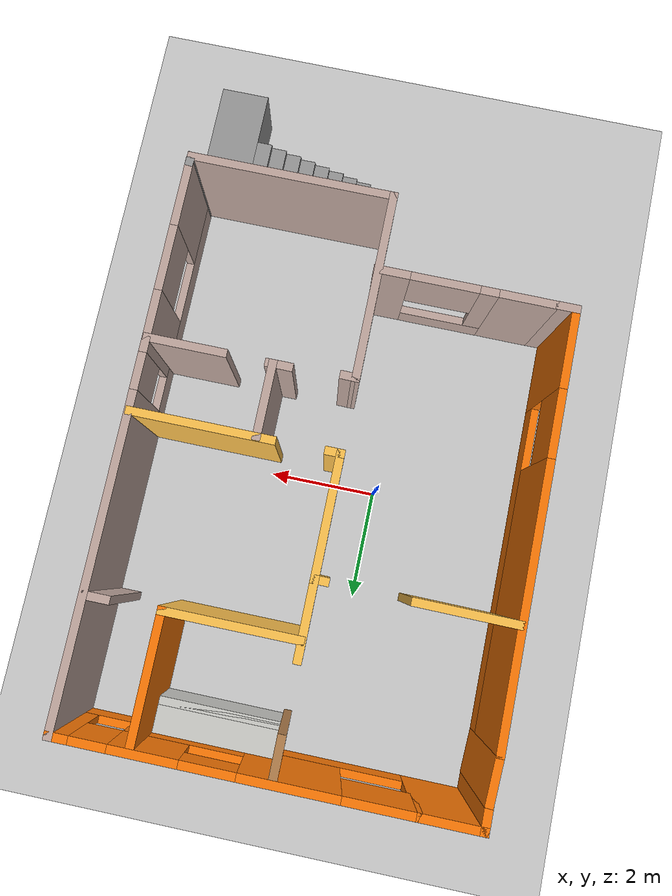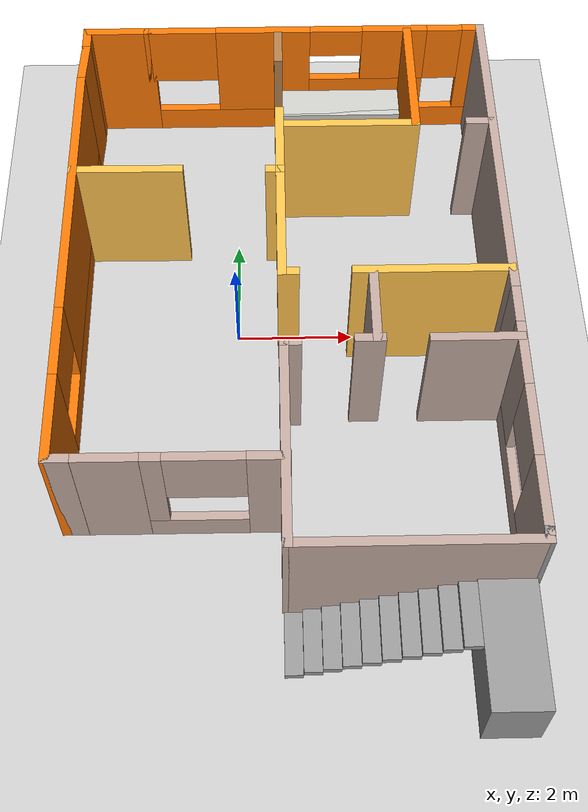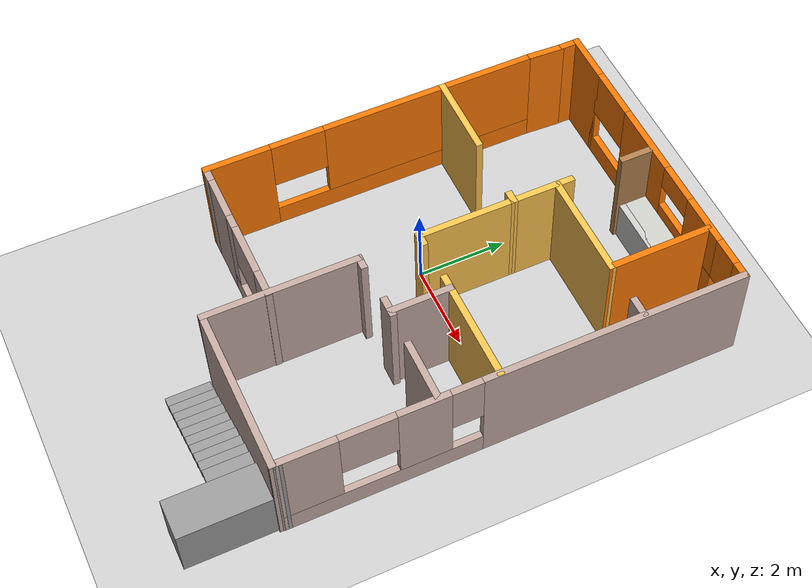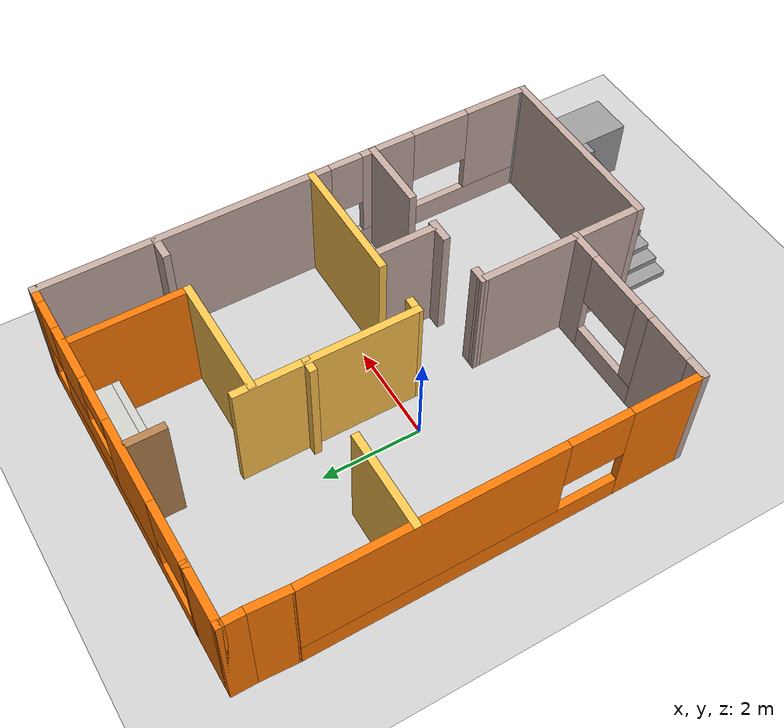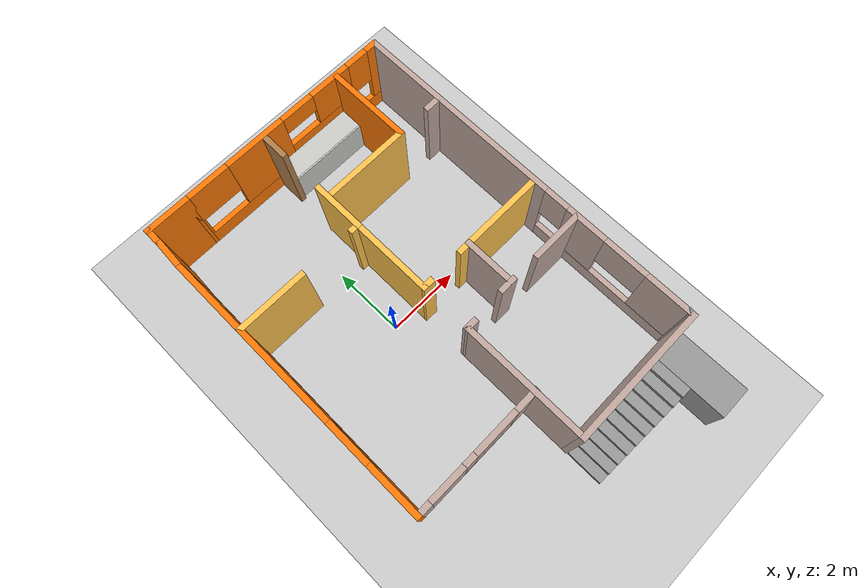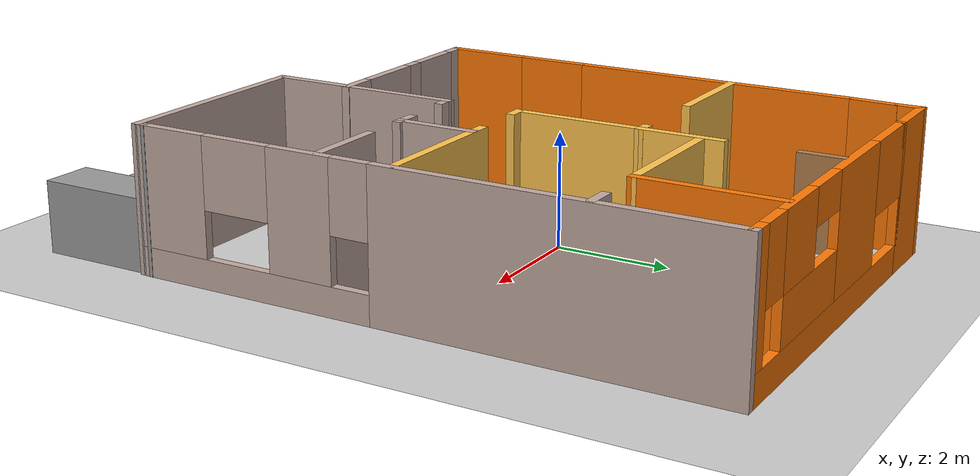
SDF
<sdf version="1.7">
 <world name="default">
  <scene><ambient>0.4 0.4 0.4 1</ambient><background>0.7 0.7 0.7 1</background><shadows>1</shadows></scene>
  <light name="sun" type="directional">
   <pose>0 0 10 0 -0 0</pose>
   <diffuse>0.8 0.8 0.8 1</diffuse>
   <specular>0.2 0.2 0.2 1</specular>
   <attenuation>
    <range>1000</range>
    <constant>0.9</constant>
    <linear>0.01</linear>
    <quadratic>0.001</quadratic>
   </attenuation>
   <direction>-0.5 0.1 -0.9</direction>
   <spot><inner_angle>0</inner_angle><outer_angle>0</outer_angle><falloff>0</falloff></spot>
  </light>
  <model name="ground_plane">
   <static>1</static>
   <link name="link">
    <collision name="collision">
     <geometry><plane><normal>0 0 1</normal><size>100 100</size></plane></geometry>
     <surface>
      <contact><collide_bitmask>65535</collide_bitmask></contact>
      <friction><ode><mu>100</mu><mu2>50</mu2></ode></friction>
     </surface>
    </collision>
    <visual name="visual">
     <cast_shadows>0</cast_shadows>
     <geometry><plane><normal>0 0 1</normal><size>100 100</size></plane></geometry>
     <material>
      <script><uri>file://media/materials/scripts/gazebo.material</uri><name>Gazebo/Grey</name></script>
     </material>
    </visual>
   </link>
  </model>
  <physics type="ode">
   <real_time_update_rate>1000</real_time_update_rate>
   <max_step_size>0.001</max_step_size>
   <real_time_factor>1</real_time_factor>
   <ode>
    <solver>
     <type>quick</type>
     <iters>150</iters>
     <precon_iters>0</precon_iters>
     <sor>1.4</sor>
     <use_dynamic_moi_rescaling>1</use_dynamic_moi_rescaling>
    </solver>
    <constraints>
     <cfm>1e-05</cfm>
     <erp>0.2</erp>
     <contact_max_correcting_vel>2000</contact_max_correcting_vel>
     <contact_surface_layer>0.01</contact_surface_layer>
    </constraints>
   </ode>
  </physics>
  <gravity>0 0 -9.8</gravity>
  <magnetic_field>6e-06 2.3e-05 -4.2e-05</magnetic_field>
  <atmosphere type="adiabatic"/>
  <spherical_coordinates>
   <surface_model>EARTH_WGS84</surface_model>
   <latitude_deg>0</latitude_deg>
   <longitude_deg>0</longitude_deg>
   <elevation>0</elevation>
   <heading_deg>0</heading_deg>
  </spherical_coordinates>
  <model name="a1">
   <pose>0.86738 -0.956276 0 0 -0 0</pose>
   <link name="Stairs_1">
    <visual name="Stairs_1_Visual_0">
     <pose>-0.002241 -4.72083 0.0625 0 -0 1.5708</pose>
     <geometry><box><size>1 0.2874 0.125</size></box></geometry>
     <material>
      <script><uri>file://media/materials/scripts/gazebo.material</uri><name>Gazebo/Grey</name></script>
      <ambient>1 1 1 1</ambient>
     </material>
     <meta><layer>0</layer></meta>
    </visual>
    <collision name="Stairs_1_Collision_0">
     <geometry><box><size>1 0.2874 0.125</size></box></geometry>
     <pose>-0.002241 -4.72083 0.0625 0 -0 1.5708</pose>
    </collision>
    <visual name="Stairs_1_Visual_1">
     <pose>0.285159 -4.72083 0.1875 0 -0 1.5708</pose>
     <geometry><box><size>1 0.2874 0.125</size></box></geometry>
     <material>
      <script><uri>file://media/materials/scripts/gazebo.material</uri><name>Gazebo/Grey</name></script>
      <ambient>1 1 1 1</ambient>
     </material>
     <meta><layer>0</layer></meta>
    </visual>
    <collision name="Stairs_1_Collision_1">
     <geometry><box><size>1 0.2874 0.125</size></box></geometry>
     <pose>0.285159 -4.72083 0.1875 0 -0 1.5708</pose>
    </collision>
    <visual name="Stairs_1_Visual_2">
     <pose>0.572559 -4.72083 0.3125 0 -0 1.5708</pose>
     <geometry><box><size>1 0.2874 0.125</size></box></geometry>
     <material>
      <script><uri>file://media/materials/scripts/gazebo.material</uri><name>Gazebo/Grey</name></script>
      <ambient>1 1 1 1</ambient>
     </material>
     <meta><layer>0</layer></meta>
    </visual>
    <collision name="Stairs_1_Collision_2">
     <geometry><box><size>1 0.2874 0.125</size></box></geometry>
     <pose>0.572559 -4.72083 0.3125 0 -0 1.5708</pose>
    </collision>
    <visual name="Stairs_1_Visual_3">
     <pose>0.859959 -4.72083 0.4375 0 -0 1.5708</pose>
     <geometry><box><size>1 0.2874 0.125</size></box></geometry>
     <material>
      <script><uri>file://media/materials/scripts/gazebo.material</uri><name>Gazebo/Grey</name></script>
      <ambient>1 1 1 1</ambient>
     </material>
     <meta><layer>0</layer></meta>
    </visual>
    <collision name="Stairs_1_Collision_3">
     <geometry><box><size>1 0.2874 0.125</size></box></geometry>
     <pose>0.859959 -4.72083 0.4375 0 -0 1.5708</pose>
    </collision>
    <visual name="Stairs_1_Visual_4">
     <pose>1.14736 -4.72083 0.5625 0 -0 1.5708</pose>
     <geometry><box><size>1 0.2874 0.125</size></box></geometry>
     <material>
      <script><uri>file://media/materials/scripts/gazebo.material</uri><name>Gazebo/Grey</name></script>
      <ambient>1 1 1 1</ambient>
     </material>
     <meta><layer>0</layer></meta>
    </visual>
    <collision name="Stairs_1_Collision_4">
     <geometry><box><size>1 0.2874 0.125</size></box></geometry>
     <pose>1.14736 -4.72083 0.5625 0 -0 1.5708</pose>
    </collision>
    <visual name="Stairs_1_Visual_5">
     <pose>1.43476 -4.72083 0.6875 0 -0 1.5708</pose>
     <geometry><box><size>1 0.2874 0.125</size></box></geometry>
     <material>
      <script><uri>file://media/materials/scripts/gazebo.material</uri><name>Gazebo/Grey</name></script>
      <ambient>1 1 1 1</ambient>
     </material>
     <meta><layer>0</layer></meta>
    </visual>
    <collision name="Stairs_1_Collision_5">
     <geometry><box><size>1 0.2874 0.125</size></box></geometry>
     <pose>1.43476 -4.72083 0.6875 0 -0 1.5708</pose>
    </collision>
    <visual name="Stairs_1_Visual_6">
     <pose>1.72216 -4.72083 0.8125 0 -0 1.5708</pose>
     <geometry><box><size>1 0.2874 0.125</size></box></geometry>
     <material>
      <script><uri>file://media/materials/scripts/gazebo.material</uri><name>Gazebo/Grey</name></script>
      <ambient>1 1 1 1</ambient>
     </material>
     <meta><layer>0</layer></meta>
    </visual>
    <collision name="Stairs_1_Collision_6">
     <geometry><box><size>1 0.2874 0.125</size></box></geometry>
     <pose>1.72216 -4.72083 0.8125 0 -0 1.5708</pose>
    </collision>
    <visual name="Stairs_1_Visual_7">
     <pose>2.00956 -4.72083 0.9375 0 -0 1.5708</pose>
     <geometry><box><size>1 0.2874 0.125</size></box></geometry>
     <material>
      <script><uri>file://media/materials/scripts/gazebo.material</uri><name>Gazebo/Grey</name></script>
      <ambient>1 1 1 1</ambient>
     </material>
     <meta><layer>0</layer></meta>
    </visual>
    <collision name="Stairs_1_Collision_7">
     <geometry><box><size>1 0.2874 0.125</size></box></geometry>
     <pose>2.00956 -4.72083 0.9375 0 -0 1.5708</pose>
    </collision>
    <visual name="Stairs_1_Visual_8">
     <pose>2.29696 -4.72083 1.0625 0 -0 1.5708</pose>
     <geometry><box><size>1 0.2874 0.125</size></box></geometry>
     <material>
      <script><uri>file://media/materials/scripts/gazebo.material</uri><name>Gazebo/Grey</name></script>
      <ambient>1 1 1 1</ambient>
     </material>
     <meta><layer>0</layer></meta>
    </visual>
    <collision name="Stairs_1_Collision_8">
     <geometry><box><size>1 0.2874 0.125</size></box></geometry>
     <pose>2.29696 -4.72083 1.0625 0 -0 1.5708</pose>
    </collision>
    <visual name="Stairs_1_Visual_9">
     <pose>2.58436 -4.72083 1.1875 0 -0 1.5708</pose>
     <geometry><box><size>1 0.2874 0.125</size></box></geometry>
     <material>
      <script><uri>file://media/materials/scripts/gazebo.material</uri><name>Gazebo/Grey</name></script>
      <ambient>1 1 1 1</ambient>
     </material>
     <meta><layer>0</layer></meta>
    </visual>
    <collision name="Stairs_1_Collision_9">
     <geometry><box><size>1 0.2874 0.125</size></box></geometry>
     <pose>2.58436 -4.72083 1.1875 0 -0 1.5708</pose>
    </collision>
   </link>
   <link name="Stairs_5">
    <visual name="Stairs_5_Visual_0">
     <pose>1.07856 5.7184 0.5 0 -0 -1.5708</pose>
     <geometry><box><size>0.607898 2.3944 1</size></box></geometry>
     <material>
      <script><uri>file://media/materials/scripts/gazebo.material</uri><name>Gazebo/CeilingTiled</name></script>
      <ambient>1 1 1 1</ambient>
     </material>
     <meta><layer>0</layer></meta>
    </visual>
    <collision name="Stairs_5_Collision_0">
     <geometry><box><size>0.607898 2.3944 1</size></box></geometry>
     <pose>1.07856 5.7184 0.5 0 -0 -1.5708</pose>
    </collision>
   </link>
   <link name="Stairs_7">
    <visual name="Stairs_7_Visual_0">
     <pose>3.17806 -5.15156 0.625 0 -0 0</pose>
     <geometry><box><size>0.903903 2.05115 1.25</size></box></geometry>
     <material>
      <script><uri>file://media/materials/scripts/gazebo.material</uri><name>Gazebo/Grey</name></script>
      <ambient>1 1 1 1</ambient>
     </material>
     <meta><layer>0</layer></meta>
    </visual>
    <collision name="Stairs_7_Collision_0">
     <geometry><box><size>0.903903 2.05115 1.25</size></box></geometry>
     <pose>3.17806 -5.15156 0.625 0 -0 0</pose>
    </collision>
   </link>
   <link name="Wall_0">
    <collision name="Wall_0_Collision">
     <geometry><box><size>0.5 0.15 2.5</size></box></geometry>
     <pose>0 0 1.25 0 -0 0</pose>
    </collision>
    <visual name="Wall_0_Visual">
     <pose>0 0 1.25 0 -0 0</pose>
     <geometry><box><size>0.5 0.15 2.5</size></box></geometry>
     <material>
      <script><uri>file://media/materials/scripts/gazebo.material</uri><name>Gazebo/Grey</name></script>
      <ambient>0.996078 0.47451 0.0196078 1</ambient>
     </material>
     <meta><layer>0</layer></meta>
    </visual>
    <pose>-3.58324 5.92713 0 0 -0 1.5708</pose>
   </link>
   <link name="Wall_1">
    <collision name="Wall_1_Collision">
     <geometry><box><size>1.25 0.15 2.5</size></box></geometry>
     <pose>0 0 1.25 0 -0 0</pose>
    </collision>
    <visual name="Wall_1_Visual">
     <pose>0 0 1.25 0 -0 0</pose>
     <geometry><box><size>1.25 0.15 2.5</size></box></geometry>
     <material>
      <script><uri>file://media/materials/scripts/gazebo.material</uri><name>Gazebo/Grey</name></script>
      <ambient>0.996078 0.47451 0.0196078 1</ambient>
     </material>
     <meta><layer>0</layer></meta>
    </visual>
    <pose>-3.03324 6.10213 0 0 -0 0</pose>
   </link>
   <link name="Wall_11">
    <pose>-1.12794 -2.72759 0 0 -0 3.14159</pose>
    <visual name="Wall_11_Visual_0">
     <pose>-0.792071 0 1.25 0 -0 0</pose>
     <geometry><box><size>0.665858 0.15 2.5</size></box></geometry>
     <material>
      <script><uri>file://media/materials/scripts/gazebo.material</uri><name>Gazebo/Grey</name></script>
      <ambient>0.760784 0.662745 0.627451 1</ambient>
     </material>
     <meta><layer>0</layer></meta>
    </visual>
    <collision name="Wall_11_Collision_0">
     <geometry><box><size>0.665858 0.15 2.5</size></box></geometry>
     <pose>-0.792071 0 1.25 0 -0 0</pose>
    </collision>
    <visual name="Wall_11_Visual_1">
     <pose>0.332929 0 0.25 0 -0 0</pose>
     <geometry><box><size>1.58414 0.15 0.5</size></box></geometry>
     <material>
      <script><uri>file://media/materials/scripts/gazebo.material</uri><name>Gazebo/Grey</name></script>
      <ambient>0.760784 0.662745 0.627451 1</ambient>
     </material>
     <meta><layer>0</layer></meta>
    </visual>
    <collision name="Wall_11_Collision_1">
     <geometry><box><size>1.58414 0.15 0.5</size></box></geometry>
     <pose>0.332929 0 0.25 0 -0 0</pose>
    </collision>
    <visual name="Wall_11_Visual_2">
     <pose>0.957778 0 1.5 0 -0 0</pose>
     <geometry><box><size>0.334444 0.15 2</size></box></geometry>
     <material>
      <script><uri>file://media/materials/scripts/gazebo.material</uri><name>Gazebo/Grey</name></script>
      <ambient>0.760784 0.662745 0.627451 1</ambient>
     </material>
     <meta><layer>0</layer></meta>
    </visual>
    <collision name="Wall_11_Collision_2">
     <geometry><box><size>0.334444 0.15 2</size></box></geometry>
     <pose>0.957778 0 1.5 0 -0 0</pose>
    </collision>
    <visual name="Wall_11_Visual_3">
     <pose>0.165707 0 1.9 0 -0 0</pose>
     <geometry><box><size>1.2497 0.15 1.2</size></box></geometry>
     <material>
      <script><uri>file://media/materials/scripts/gazebo.material</uri><name>Gazebo/Grey</name></script>
      <ambient>0.760784 0.662745 0.627451 1</ambient>
     </material>
     <meta><layer>0</layer></meta>
    </visual>
    <collision name="Wall_11_Collision_3">
     <geometry><box><size>1.2497 0.15 1.2</size></box></geometry>
     <pose>0.165707 0 1.9 0 -0 0</pose>
    </collision>
   </link>
   <link name="Wall_13">
    <collision name="Wall_13_Collision">
     <geometry><box><size>0.437674 0.15 2.5</size></box></geometry>
     <pose>0 0 1.25 0 -0 0</pose>
    </collision>
    <visual name="Wall_13_Visual">
     <pose>0 0 1.25 0 -0 0</pose>
     <geometry><box><size>0.437674 0.15 2.5</size></box></geometry>
     <material>
      <script><uri>file://media/materials/scripts/gazebo.material</uri><name>Gazebo/Grey</name></script>
      <ambient>0.760784 0.662745 0.627451 1</ambient>
     </material>
     <meta><layer>0</layer></meta>
    </visual>
    <pose>-3.47772 -2.72759 0 0 -0 3.14159</pose>
   </link>
   <link name="Wall_14">
    <pose>-3.62156 1.07241 0 0 -0 1.5708</pose>
    <visual name="Wall_14_Visual_0">
     <pose>-3.11359 0 1.25 0 -0 0</pose>
     <geometry><box><size>1.52282 0.15 2.5</size></box></geometry>
     <material>
      <script><uri>file://media/materials/scripts/gazebo.material</uri><name>Gazebo/Grey</name></script>
      <ambient>0.996078 0.47451 0.0196078 1</ambient>
     </material>
     <meta><layer>0</layer></meta>
    </visual>
    <collision name="Wall_14_Collision_0">
     <geometry><box><size>1.52282 0.15 2.5</size></box></geometry>
     <pose>-3.11359 0 1.25 0 -0 0</pose>
    </collision>
    <visual name="Wall_14_Visual_1">
     <pose>0.761408 0 0.25 0 -0 0</pose>
     <geometry><box><size>6.22719 0.15 0.5</size></box></geometry>
     <material>
      <script><uri>file://media/materials/scripts/gazebo.material</uri><name>Gazebo/Grey</name></script>
      <ambient>0.996078 0.47451 0.0196078 1</ambient>
     </material>
     <meta><layer>0</layer></meta>
    </visual>
    <collision name="Wall_14_Collision_1">
     <geometry><box><size>6.22719 0.15 0.5</size></box></geometry>
     <pose>0.761408 0 0.25 0 -0 0</pose>
    </collision>
    <visual name="Wall_14_Visual_2">
     <pose>1.38064 0 1.5 0 -0 0</pose>
     <geometry><box><size>4.98873 0.15 2</size></box></geometry>
     <material>
      <script><uri>file://media/materials/scripts/gazebo.material</uri><name>Gazebo/Grey</name></script>
      <ambient>0.996078 0.47451 0.0196078 1</ambient>
     </material>
     <meta><layer>0</layer></meta>
    </visual>
    <collision name="Wall_14_Collision_2">
     <geometry><box><size>4.98873 0.15 2</size></box></geometry>
     <pose>1.38064 0 1.5 0 -0 0</pose>
    </collision>
    <visual name="Wall_14_Visual_3">
     <pose>-1.73296 0 1.9 0 -0 0</pose>
     <geometry><box><size>1.23846 0.15 1.2</size></box></geometry>
     <material>
      <script><uri>file://media/materials/scripts/gazebo.material</uri><name>Gazebo/Grey</name></script>
      <ambient>0.996078 0.47451 0.0196078 1</ambient>
     </material>
     <meta><layer>0</layer></meta>
    </visual>
    <collision name="Wall_14_Collision_3">
     <geometry><box><size>1.23846 0.15 1.2</size></box></geometry>
     <pose>-1.73296 0 1.9 0 -0 0</pose>
    </collision>
   </link>
   <link name="Wall_16">
    <collision name="Wall_16_Collision">
     <geometry><box><size>0.75 0.15 2.5</size></box></geometry>
     <pose>0 0 1.25 0 -0 0</pose>
    </collision>
    <visual name="Wall_16_Visual">
     <pose>0 0 1.25 0 -0 0</pose>
     <geometry><box><size>0.75 0.15 2.5</size></box></geometry>
     <material>
      <script><uri>file://media/materials/scripts/gazebo.material</uri><name>Gazebo/Wood</name></script>
      <ambient>1 1 1 1</ambient>
     </material>
     <meta><layer>0</layer></meta>
    </visual>
    <pose>-0.099447 5.67243 0 0 -0 1.5708</pose>
   </link>
   <link name="Wall_19">
    <collision name="Wall_19_Collision">
     <geometry><box><size>1.48853 0.15 2.5</size></box></geometry>
     <pose>0 0 1.25 0 -0 0</pose>
    </collision>
    <visual name="Wall_19_Visual">
     <pose>0 0 1.25 0 -0 0</pose>
     <geometry><box><size>1.48853 0.15 2.5</size></box></geometry>
     <material>
      <script><uri>file://media/materials/scripts/gazebo.material</uri><name>Gazebo/Grey</name></script>
      <ambient>1 0.764706 0.305882 1</ambient>
     </material>
     <meta><layer>0</layer></meta>
    </visual>
    <pose>-0.098941 3.43217 0 0 -0 1.5708</pose>
   </link>
   <link name="Wall_2">
    <pose>0.566761 6.10213 0 0 -0 0</pose>
    <visual name="Wall_2_Visual_0">
     <pose>-3.08057 0 1.25 0 -0 0</pose>
     <geometry><box><size>0.088858 0.15 2.5</size></box></geometry>
     <material>
      <script><uri>file://media/materials/scripts/gazebo.material</uri><name>Gazebo/Grey</name></script>
      <ambient>0.996078 0.47451 0.0196078 1</ambient>
     </material>
     <meta><layer>0</layer></meta>
    </visual>
    <collision name="Wall_2_Collision_0">
     <geometry><box><size>0.088858 0.15 2.5</size></box></geometry>
     <pose>-3.08057 0 1.25 0 -0 0</pose>
    </collision>
    <visual name="Wall_2_Visual_1">
     <pose>0.044429 0 0.25 0 -0 0</pose>
     <geometry><box><size>6.16114 0.15 0.5</size></box></geometry>
     <material>
      <script><uri>file://media/materials/scripts/gazebo.material</uri><name>Gazebo/Grey</name></script>
      <ambient>0.996078 0.47451 0.0196078 1</ambient>
     </material>
     <meta><layer>0</layer></meta>
    </visual>
    <collision name="Wall_2_Collision_1">
     <geometry><box><size>6.16114 0.15 0.5</size></box></geometry>
     <pose>0.044429 0 0.25 0 -0 0</pose>
    </collision>
    <visual name="Wall_2_Visual_2">
     <pose>-0.938309 0 1.5 0 -0 0</pose>
     <geometry><box><size>1.73433 0.15 2</size></box></geometry>
     <material>
      <script><uri>file://media/materials/scripts/gazebo.material</uri><name>Gazebo/Grey</name></script>
      <ambient>0.996078 0.47451 0.0196078 1</ambient>
     </material>
     <meta><layer>0</layer></meta>
    </visual>
    <collision name="Wall_2_Collision_2">
     <geometry><box><size>1.73433 0.15 2</size></box></geometry>
     <pose>-0.938309 0 1.5 0 -0 0</pose>
    </collision>
    <visual name="Wall_2_Visual_3">
     <pose>2.92469 0 1.5 0 -0 0</pose>
     <geometry><box><size>0.400628 0.15 2</size></box></geometry>
     <material>
      <script><uri>file://media/materials/scripts/gazebo.material</uri><name>Gazebo/Grey</name></script>
      <ambient>0.996078 0.47451 0.0196078 1</ambient>
     </material>
     <meta><layer>0</layer></meta>
    </visual>
    <collision name="Wall_2_Collision_3">
     <geometry><box><size>0.400628 0.15 2</size></box></geometry>
     <pose>2.92469 0 1.5 0 -0 0</pose>
    </collision>
    <visual name="Wall_2_Visual_4">
     <pose>1.00375 0 0.9 0 -0 0</pose>
     <geometry><box><size>2.14979 0.15 0.8</size></box></geometry>
     <material>
      <script><uri>file://media/materials/scripts/gazebo.material</uri><name>Gazebo/Grey</name></script>
      <ambient>0.996078 0.47451 0.0196078 1</ambient>
     </material>
     <meta><layer>0</layer></meta>
    </visual>
    <collision name="Wall_2_Collision_4">
     <geometry><box><size>2.14979 0.15 0.8</size></box></geometry>
     <pose>1.00375 0 0.9 0 -0 0</pose>
    </collision>
    <visual name="Wall_2_Visual_5">
     <pose>1.48375 0 1.9 0 -0 0</pose>
     <geometry><box><size>1.18979 0.15 1.2</size></box></geometry>
     <material>
      <script><uri>file://media/materials/scripts/gazebo.material</uri><name>Gazebo/Grey</name></script>
      <ambient>0.996078 0.47451 0.0196078 1</ambient>
     </material>
     <meta><layer>0</layer></meta>
    </visual>
    <collision name="Wall_2_Collision_5">
     <geometry><box><size>1.18979 0.15 1.2</size></box></geometry>
     <pose>1.48375 0 1.9 0 -0 0</pose>
    </collision>
    <visual name="Wall_2_Visual_6">
     <pose>-2.42081 0 1.9 0 -0 0</pose>
     <geometry><box><size>1.23067 0.15 1.2</size></box></geometry>
     <material>
      <script><uri>file://media/materials/scripts/gazebo.material</uri><name>Gazebo/Grey</name></script>
      <ambient>0.996078 0.47451 0.0196078 1</ambient>
     </material>
     <meta><layer>0</layer></meta>
    </visual>
    <collision name="Wall_2_Collision_6">
     <geometry><box><size>1.23067 0.15 1.2</size></box></geometry>
     <pose>-2.42081 0 1.9 0 -0 0</pose>
    </collision>
    <visual name="Wall_2_Visual_7">
     <pose>2.40151 0 1.9 0 -0 0</pose>
     <geometry><box><size>0.64573 0.15 1.2</size></box></geometry>
     <material>
      <script><uri>file://media/materials/scripts/gazebo.material</uri><name>Gazebo/Grey</name></script>
      <ambient>0.996078 0.47451 0.0196078 1</ambient>
     </material>
     <meta><layer>0</layer></meta>
    </visual>
    <collision name="Wall_2_Collision_7">
     <geometry><box><size>0.64573 0.15 1.2</size></box></geometry>
     <pose>2.40151 0 1.9 0 -0 0</pose>
    </collision>
    <visual name="Wall_2_Visual_8">
     <pose>0.408855 0 2.2015 0 -0 0</pose>
     <geometry><box><size>0.96 0.15 0.597</size></box></geometry>
     <material>
      <script><uri>file://media/materials/scripts/gazebo.material</uri><name>Gazebo/Grey</name></script>
      <ambient>0.996078 0.47451 0.0196078 1</ambient>
     </material>
     <meta><layer>0</layer></meta>
    </visual>
    <collision name="Wall_2_Collision_8">
     <geometry><box><size>0.96 0.15 0.597</size></box></geometry>
     <pose>0.408855 0 2.2015 0 -0 0</pose>
    </collision>
   </link>
   <link name="Wall_23">
    <collision name="Wall_23_Collision">
     <geometry><box><size>0.356563 0.15 2.5</size></box></geometry>
     <pose>0 0 1.25 0 -0 0</pose>
    </collision>
    <visual name="Wall_23_Visual">
     <pose>0 0 1.25 0 -0 0</pose>
     <geometry><box><size>0.356563 0.15 2.5</size></box></geometry>
     <material>
      <script><uri>file://media/materials/scripts/gazebo.material</uri><name>Gazebo/Grey</name></script>
      <ambient>1 0.764706 0.305882 1</ambient>
     </material>
     <meta><layer>0</layer></meta>
    </visual>
    <pose>0.004341 0.6051 0 0 -0 3.14089</pose>
   </link>
   <link name="Wall_24">
    <collision name="Wall_24_Collision">
     <geometry><box><size>2.30751 0.15 2.5</size></box></geometry>
     <pose>0 0 1.25 0 -0 0</pose>
    </collision>
    <visual name="Wall_24_Visual">
     <pose>0 0 1.25 0 -0 0</pose>
     <geometry><box><size>2.30751 0.15 2.5</size></box></geometry>
     <material>
      <script><uri>file://media/materials/scripts/gazebo.material</uri><name>Gazebo/Grey</name></script>
      <ambient>1 0.764706 0.305882 1</ambient>
     </material>
     <meta><layer>0</layer></meta>
    </visual>
    <pose>-0.098941 1.68417 0 0 -0 1.5708</pose>
   </link>
   <link name="Wall_26">
    <collision name="Wall_26_Collision">
     <geometry><box><size>2.5 0.15 2.5</size></box></geometry>
     <pose>0 0 1.25 0 -0 0</pose>
    </collision>
    <visual name="Wall_26_Visual">
     <pose>0 0 1.25 0 -0 0</pose>
     <geometry><box><size>2.5 0.15 2.5</size></box></geometry>
     <material>
      <script><uri>file://media/materials/scripts/gazebo.material</uri><name>Gazebo/Grey</name></script>
      <ambient>1 0.764706 0.305882 1</ambient>
     </material>
     <meta><layer>0</layer></meta>
    </visual>
    <pose>1.10206 3.78517 0 0 -0 0</pose>
   </link>
   <link name="Wall_28">
    <collision name="Wall_28_Collision">
     <geometry><box><size>2.40267 0.15 2.5</size></box></geometry>
     <pose>0 0 1.25 0 -0 0</pose>
    </collision>
    <visual name="Wall_28_Visual">
     <pose>0 0 1.25 0 -0 0</pose>
     <geometry><box><size>2.40267 0.15 2.5</size></box></geometry>
     <material>
      <script><uri>file://media/materials/scripts/gazebo.material</uri><name>Gazebo/Grey</name></script>
      <ambient>0.996078 0.47451 0.0196078 1</ambient>
     </material>
     <meta><layer>0</layer></meta>
    </visual>
    <pose>2.27612 4.91168 0 0 -0 1.57163</pose>
   </link>
   <link name="Wall_3">
    <pose>3.61676 1.05214 0 0 -0 -1.5708</pose>
    <visual name="Wall_3_Visual_0">
     <pose>-2.16147 0 1.25 0 -0 0</pose>
     <geometry><box><size>5.92706 0.15 2.5</size></box></geometry>
     <material>
      <script><uri>file://media/materials/scripts/gazebo.material</uri><name>Gazebo/Grey</name></script>
      <ambient>0.760784 0.662745 0.627451 1</ambient>
     </material>
     <meta><layer>0</layer></meta>
    </visual>
    <collision name="Wall_3_Collision_0">
     <geometry><box><size>5.92706 0.15 2.5</size></box></geometry>
     <pose>-2.16147 0 1.25 0 -0 0</pose>
    </collision>
    <visual name="Wall_3_Visual_1">
     <pose>2.96353 0 0.25 0 -0 0</pose>
     <geometry><box><size>4.32294 0.15 0.5</size></box></geometry>
     <material>
      <script><uri>file://media/materials/scripts/gazebo.material</uri><name>Gazebo/Grey</name></script>
      <ambient>0.760784 0.662745 0.627451 1</ambient>
     </material>
     <meta><layer>0</layer></meta>
    </visual>
    <collision name="Wall_3_Collision_1">
     <geometry><box><size>4.32294 0.15 0.5</size></box></geometry>
     <pose>2.96353 0 0.25 0 -0 0</pose>
    </collision>
    <visual name="Wall_3_Visual_2">
     <pose>2.05041 0 1.5 0 -0 0</pose>
     <geometry><box><size>1.14403 0.15 2</size></box></geometry>
     <material>
      <script><uri>file://media/materials/scripts/gazebo.material</uri><name>Gazebo/Grey</name></script>
      <ambient>0.760784 0.662745 0.627451 1</ambient>
     </material>
     <meta><layer>0</layer></meta>
    </visual>
    <collision name="Wall_3_Collision_2">
     <geometry><box><size>1.14403 0.15 2</size></box></geometry>
     <pose>2.05041 0 1.5 0 -0 0</pose>
    </collision>
    <visual name="Wall_3_Visual_3">
     <pose>4.4817 0 1.5 0 -0 0</pose>
     <geometry><box><size>1.2866 0.15 2</size></box></geometry>
     <material>
      <script><uri>file://media/materials/scripts/gazebo.material</uri><name>Gazebo/Grey</name></script>
      <ambient>0.760784 0.662745 0.627451 1</ambient>
     </material>
     <meta><layer>0</layer></meta>
    </visual>
    <collision name="Wall_3_Collision_3">
     <geometry><box><size>1.2866 0.15 2</size></box></geometry>
     <pose>4.4817 0 1.5 0 -0 0</pose>
    </collision>
    <visual name="Wall_3_Visual_4">
     <pose>1.14023 0 1.9 0 -0 0</pose>
     <geometry><box><size>0.676333 0.15 1.2</size></box></geometry>
     <material>
      <script><uri>file://media/materials/scripts/gazebo.material</uri><name>Gazebo/Grey</name></script>
      <ambient>0.760784 0.662745 0.627451 1</ambient>
     </material>
     <meta><layer>0</layer></meta>
    </visual>
    <collision name="Wall_3_Collision_4">
     <geometry><box><size>0.676333 0.15 1.2</size></box></geometry>
     <pose>1.14023 0 1.9 0 -0 0</pose>
    </collision>
    <visual name="Wall_3_Visual_5">
     <pose>3.23041 0 1.9 0 -0 0</pose>
     <geometry><box><size>1.21597 0.15 1.2</size></box></geometry>
     <material>
      <script><uri>file://media/materials/scripts/gazebo.material</uri><name>Gazebo/Grey</name></script>
      <ambient>0.760784 0.662745 0.627451 1</ambient>
     </material>
     <meta><layer>0</layer></meta>
    </visual>
    <collision name="Wall_3_Collision_5">
     <geometry><box><size>1.21597 0.15 1.2</size></box></geometry>
     <pose>3.23041 0 1.9 0 -0 0</pose>
    </collision>
   </link>
   <link name="Wall_30">
    <collision name="Wall_30_Collision">
     <geometry><box><size>0.5 0.15 2.5</size></box></geometry>
     <pose>0 0 1.25 0 -0 0</pose>
    </collision>
    <visual name="Wall_30_Visual">
     <pose>0 0 1.25 0 -0 0</pose>
     <geometry><box><size>0.5 0.15 2.5</size></box></geometry>
     <material>
      <script><uri>file://media/materials/scripts/gazebo.material</uri><name>Gazebo/Grey</name></script>
      <ambient>0.760784 0.662745 0.627451 1</ambient>
     </material>
     <meta><layer>0</layer></meta>
    </visual>
    <pose>3.39846 3.79947 0 0 -0 0</pose>
   </link>
   <link name="Wall_32">
    <collision name="Wall_32_Collision">
     <geometry><box><size>2.64289 0.15 2.5</size></box></geometry>
     <pose>0 0 1.25 0 -0 0</pose>
    </collision>
    <visual name="Wall_32_Visual">
     <pose>0 0 1.25 0 -0 0</pose>
     <geometry><box><size>2.64289 0.15 2.5</size></box></geometry>
     <material>
      <script><uri>file://media/materials/scripts/gazebo.material</uri><name>Gazebo/Grey</name></script>
      <ambient>1 0.764706 0.305882 1</ambient>
     </material>
     <meta><layer>0</layer></meta>
    </visual>
    <pose>2.3485 0.622257 0 0 -0 0</pose>
   </link>
   <link name="Wall_36">
    <collision name="Wall_36_Collision">
     <geometry><box><size>0.5 0.15 2.5</size></box></geometry>
     <pose>0 0 1.25 0 -0 0</pose>
    </collision>
    <visual name="Wall_36_Visual">
     <pose>0 0 1.25 0 -0 0</pose>
     <geometry><box><size>0.5 0.15 2.5</size></box></geometry>
     <material>
      <script><uri>file://media/materials/scripts/gazebo.material</uri><name>Gazebo/Grey</name></script>
      <ambient>0.760784 0.662745 0.627451 1</ambient>
     </material>
     <meta><layer>0</layer></meta>
    </visual>
    <pose>1.25751 -0.687733 0 0 -0 0</pose>
   </link>
   <link name="Wall_43">
    <collision name="Wall_43_Collision">
     <geometry><box><size>1.44796 0.15 2.5</size></box></geometry>
     <pose>0 0 1.25 0 -0 0</pose>
    </collision>
    <visual name="Wall_43_Visual">
     <pose>0 0 1.25 0 -0 0</pose>
     <geometry><box><size>1.44796 0.15 2.5</size></box></geometry>
     <material>
      <script><uri>file://media/materials/scripts/gazebo.material</uri><name>Gazebo/Grey</name></script>
      <ambient>0.760784 0.662745 0.627451 1</ambient>
     </material>
     <meta><layer>0</layer></meta>
    </visual>
    <pose>1.36906 -0.038328 0 0 -0 -1.5708</pose>
   </link>
   <link name="Wall_45">
    <collision name="Wall_45_Collision">
     <geometry><box><size>1.5 0.15 2.5</size></box></geometry>
     <pose>0 0 1.25 0 -0 0</pose>
    </collision>
    <visual name="Wall_45_Visual">
     <pose>0 0 1.25 0 -0 0</pose>
     <geometry><box><size>1.5 0.15 2.5</size></box></geometry>
     <material>
      <script><uri>file://media/materials/scripts/gazebo.material</uri><name>Gazebo/Grey</name></script>
      <ambient>0.760784 0.662745 0.627451 1</ambient>
     </material>
     <meta><layer>0</layer></meta>
    </visual>
    <pose>2.92876 -0.697508 0 0 -0 0</pose>
   </link>
   <link name="Wall_48">
    <collision name="Wall_48_Collision">
     <geometry><box><size>2.50908 0.15 1</size></box></geometry>
     <pose>0 0 0.5 0 -0 0</pose>
    </collision>
    <visual name="Wall_48_Visual">
     <pose>0 0 0.5 0 -0 0</pose>
     <geometry><box><size>2.50908 0.15 1</size></box></geometry>
     <material>
      <script><uri>file://media/materials/scripts/gazebo.material</uri><name>Gazebo/CeilingTiled</name></script>
      <ambient>1 1 1 1</ambient>
     </material>
     <meta><layer>0</layer></meta>
    </visual>
    <pose>1.08856 5.44517 0 0 -0 -3.14159</pose>
   </link>
   <link name="Wall_6">
    <collision name="Wall_6_Collision">
     <geometry><box><size>0.266015 0.15 2.5</size></box></geometry>
     <pose>0 0 1.25 0 -0 0</pose>
    </collision>
    <visual name="Wall_6_Visual">
     <pose>0 0 1.25 0 -0 0</pose>
     <geometry><box><size>0.266015 0.15 2.5</size></box></geometry>
     <material>
      <script><uri>file://media/materials/scripts/gazebo.material</uri><name>Gazebo/Grey</name></script>
      <ambient>1 1 1 1</ambient>
     </material>
     <meta><layer>0</layer></meta>
    </visual>
    <pose>3.61291 -4.05585 0 0 -0 -1.63712</pose>
   </link>
   <link name="Wall_7">
    <collision name="Wall_7_Collision">
     <geometry><box><size>3.85062 0.15 2.5</size></box></geometry>
     <pose>0 0 1.25 0 -0 0</pose>
    </collision>
    <visual name="Wall_7_Visual">
     <pose>0 0 1.25 0 -0 0</pose>
     <geometry><box><size>3.85062 0.15 2.5</size></box></geometry>
     <material>
      <script><uri>file://media/materials/scripts/gazebo.material</uri><name>Gazebo/Grey</name></script>
      <ambient>0.760784 0.662745 0.627451 1</ambient>
     </material>
     <meta><layer>0</layer></meta>
    </visual>
    <pose>1.75906 -4.11383 0 0 -0 3.14159</pose>
   </link>
   <link name="Wall_75">
    <collision name="Wall_75_Collision">
     <geometry><box><size>1.94985 0.15 2.5</size></box></geometry>
     <pose>0 0 1.25 0 -0 0</pose>
    </collision>
    <visual name="Wall_75_Visual">
     <pose>0 0 1.25 0 -0 0</pose>
     <geometry><box><size>1.94985 0.15 2.5</size></box></geometry>
     <material>
      <script><uri>file://media/materials/scripts/gazebo.material</uri><name>Gazebo/Grey</name></script>
      <ambient>1 0.764706 0.305882 1</ambient>
     </material>
     <meta><layer>0</layer></meta>
    </visual>
    <pose>-2.72008 2.79346 0 0 -0 -0.006211</pose>
   </link>
   <link name="Wall_77">
    <collision name="Wall_77_Collision">
     <geometry><box><size>0.328552 0.15 2.5</size></box></geometry>
     <pose>0 0 1.25 0 -0 0</pose>
    </collision>
    <visual name="Wall_77_Visual">
     <pose>0 0 1.25 0 -0 0</pose>
     <geometry><box><size>0.328552 0.15 2.5</size></box></geometry>
     <material>
      <script><uri>file://media/materials/scripts/gazebo.material</uri><name>Gazebo/Grey</name></script>
      <ambient>1 0.764706 0.305882 1</ambient>
     </material>
     <meta><layer>0</layer></meta>
    </visual>
    <pose>-0.188209 2.76434 0 0 -0 3.12849</pose>
   </link>
   <link name="Wall_8">
    <collision name="Wall_8_Collision">
     <geometry><box><size>3.52633 0.15 2.5</size></box></geometry>
     <pose>0 0 1.25 0 -0 0</pose>
    </collision>
    <visual name="Wall_8_Visual">
     <pose>0 0 1.25 0 -0 0</pose>
     <geometry><box><size>3.52633 0.15 2.5</size></box></geometry>
     <material>
      <script><uri>file://media/materials/scripts/gazebo.material</uri><name>Gazebo/Grey</name></script>
      <ambient>0.760784 0.662745 0.627451 1</ambient>
     </material>
     <meta><layer>0</layer></meta>
    </visual>
    <pose>-0.090981 -2.42566 0 0 -0 1.57082</pose>
   </link>
   <link name="Wall_9">
    <collision name="Wall_9_Collision">
     <geometry><box><size>0.359232 0.15 2.5</size></box></geometry>
     <pose>0 0 1.25 0 -0 0</pose>
    </collision>
    <visual name="Wall_9_Visual">
     <pose>0 0 1.25 0 -0 0</pose>
     <geometry><box><size>0.359232 0.15 2.5</size></box></geometry>
     <material>
      <script><uri>file://media/materials/scripts/gazebo.material</uri><name>Gazebo/Grey</name></script>
      <ambient>0.760784 0.662745 0.627451 1</ambient>
     </material>
     <meta><layer>0</layer></meta>
    </visual>
    <pose>0.013588 -0.738763 0 0 -0 -0.012072</pose>
   </link>
   <static>1</static>
  </model>
  <model name="a1_edit">
   <pose>-1.41491 0.512289 0 0 -0 0</pose>
   <link name="Wall_13">
    <collision name="Wall_13_Collision">
     <geometry><box><size>1.05001 0.15 2.5</size></box></geometry>
     <pose>0 0 1.25 0 -0 0</pose>
    </collision>
    <visual name="Wall_13_Visual">
     <pose>0 0 1.25 0 -0 0</pose>
     <geometry><box><size>1.05001 0.15 2.5</size></box></geometry>
     <material>
      <script><uri>file://media/materials/scripts/gazebo.material</uri><name>Gazebo/Grey</name></script>
      <ambient>0.760784 0.662745 0.627451 1</ambient>
     </material>
     <meta><layer>0</layer></meta>
    </visual>
    <pose>-0.485086 -4.19579 0 0 -0 3.13826</pose>
   </link>
   <link name="Wall_7">
    <collision name="Wall_7_Collision">
     <geometry><box><size>0.836944 0.15 2.5</size></box></geometry>
     <pose>0 0 1.25 0 -0 0</pose>
    </collision>
    <visual name="Wall_7_Visual">
     <pose>0 0 1.25 0 -0 0</pose>
     <geometry><box><size>0.836944 0.15 2.5</size></box></geometry>
     <material>
      <script><uri>file://media/materials/scripts/gazebo.material</uri><name>Gazebo/Grey</name></script>
      <ambient>0.996078 0.47451 0.0196078 1</ambient>
     </material>
     <meta><layer>0</layer></meta>
    </visual>
    <pose>-1.31809 3.85071 0 0 -0 -1.62323</pose>
   </link>
   <static>1</static>
  </model>
 </world>
</sdf>
